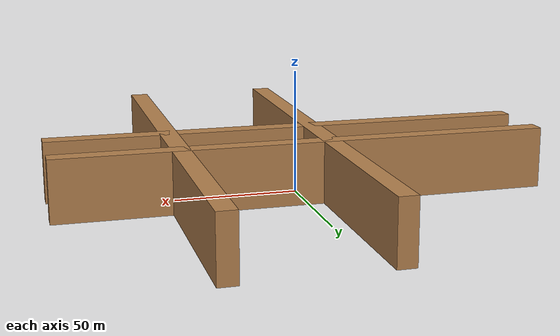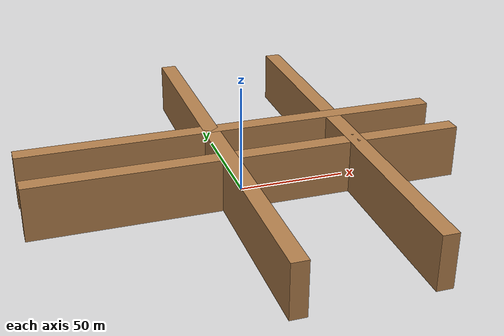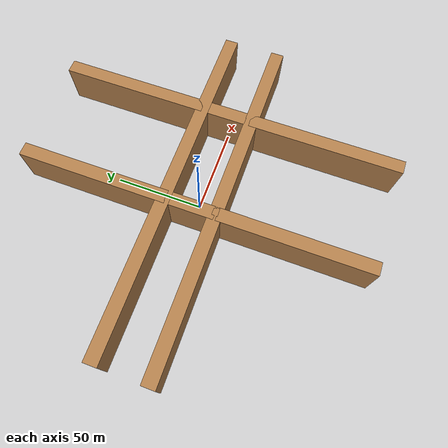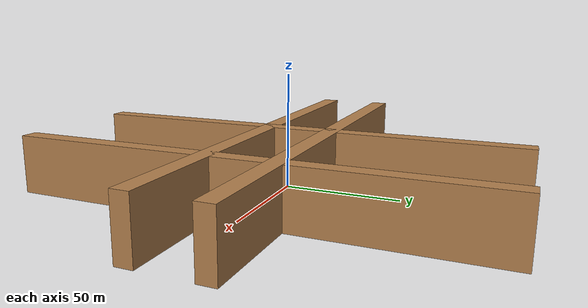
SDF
<?xml version='1.0'?>
<sdf version='1.6'>
  <model name='turtlebot3_square_scaled_5x'>
    <pose frame=''>0 0 0 0 -0 0</pose>

    <link name='Wall_0'>
      <collision name='Wall_0_Collision'>
        <geometry>
          <box>
            <!-- Scaled size: Original size multiplied by 5 -->
            <size>200 7.5 25</size>
          </box>
        </geometry>
        <!-- Scaled pose: Original pose's Z position multiplied by 5 -->
        <pose frame=''>0 0 12.5 0 -0 0</pose>
      </collision>
      <visual name='Wall_0_Visual'>
        <pose frame=''>0 0 12.5 0 -0 0</pose>
        <geometry>
          <box>
            <size>200 7.5 25</size>
          </box>
        </geometry>
        <material>
          <script>
            <uri>file://media/materials/scripts/gazebo.material</uri>
            <name>Gazebo/Wood</name>
          </script>
          <ambient>1 1 1 1</ambient>
        </material>
      </visual>
      <!-- Scaled pose: Original pose's X and Y positions multiplied by 5 -->
      <pose frame=''>0 16 0 0 -0 0</pose>
    </link>

    <link name='Wall_2'>
      <collision name='Wall_2_Collision'>
        <geometry>
          <box>
            <size>200 7.5 25</size>
          </box>
        </geometry>
        <pose frame=''>0 0 12.5 0 -0 0</pose>
      </collision>
      <visual name='Wall_2_Visual'>
        <pose frame=''>0 0 12.5 0 -0 0</pose>
        <geometry>
          <box>
            <size>200 7.5 25</size>
          </box>
        </geometry>
        <material>
          <script>
            <uri>file://media/materials/scripts/gazebo.material</uri>
            <name>Gazebo/Wood</name>
          </script>
          <ambient>1 1 1 1</ambient>
        </material>
      </visual>
      <pose frame=''>-10 0 0 0 0 -1.5708</pose>
    </link>

    <link name='Wall_3'>
      <collision name='Wall_3_Collision'>
        <geometry>
          <box>
            <size>200 7.5 25</size>
          </box>
        </geometry>
        <pose frame=''>0 0 12.5 0 -0 0</pose>
      </collision>
      <visual name='Wall_3_Visual'>
        <pose frame=''>0 0 12.5 0 -0 0</pose>
        <geometry>
          <box>
            <size>200 7.5 25</size>
          </box>
        </geometry>
        <material>
          <script>
            <uri>file://media/materials/scripts/gazebo.material</uri>
            <name>Gazebo/Wood</name>
          </script>
          <ambient>1 1 1 1</ambient>
        </material>
      </visual>
      <pose frame=''>0 -13 0 0 -0 0</pose>
    </link>

    <link name='Wall_4'>
      <collision name='Wall_4_Collision'>
        <geometry>
          <box>
            <size>200 7.5 25</size>
          </box>
        </geometry>
        <pose frame=''>0 0 12.5 0 -0 0</pose>
      </collision>
      <visual name='Wall_4_Visual'>
        <pose frame=''>0 0 12.5 0 -0 0</pose>
        <geometry>
          <box>
            <size>200 7.5 25</size>
          </box>
        </geometry>
        <material>
          <script>
            <uri>file://media/materials/scripts/gazebo.material</uri>
            <name>Gazebo/Wood</name>
          </script>
          <ambient>1 1 1 1</ambient>
        </material>
      </visual>
      <pose frame=''>50 0 0 0 -0 1.5708</pose>
    </link>

    <static>1</static>
  </model>
</sdf>
